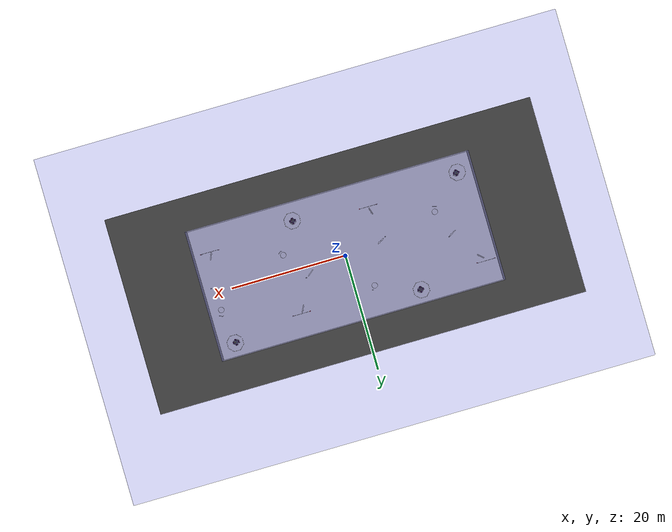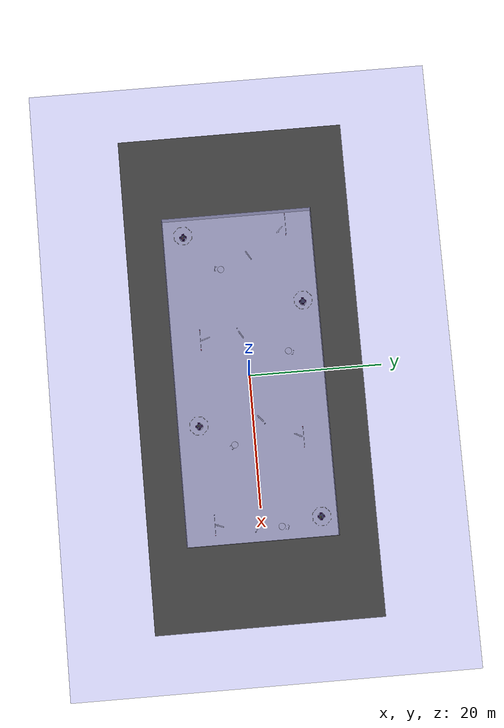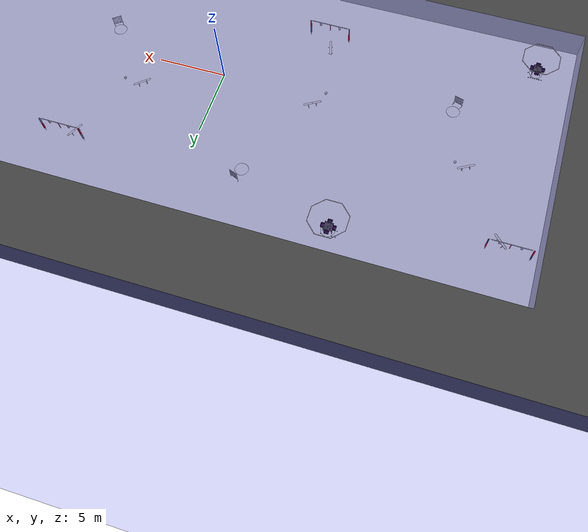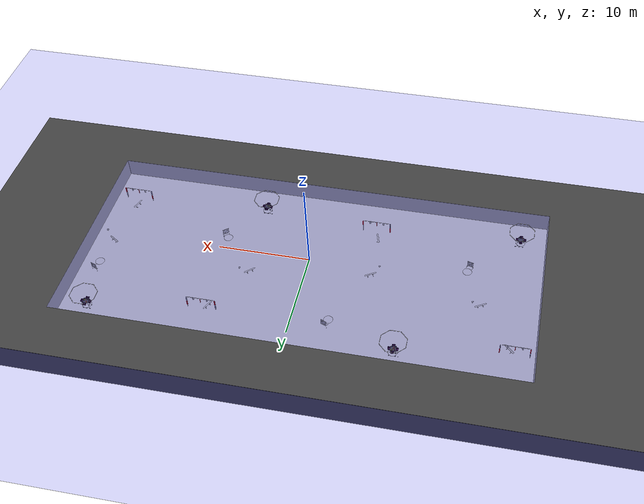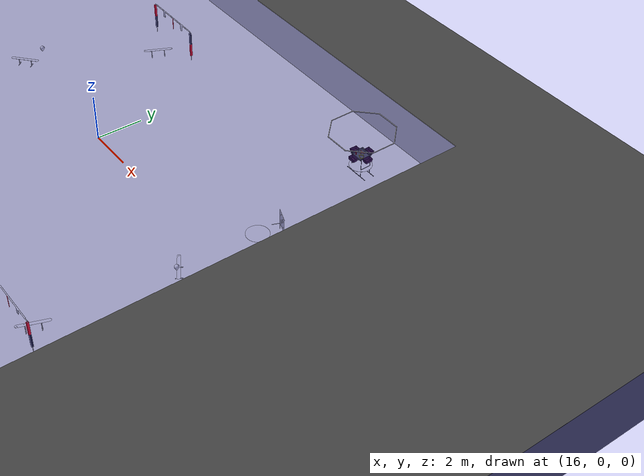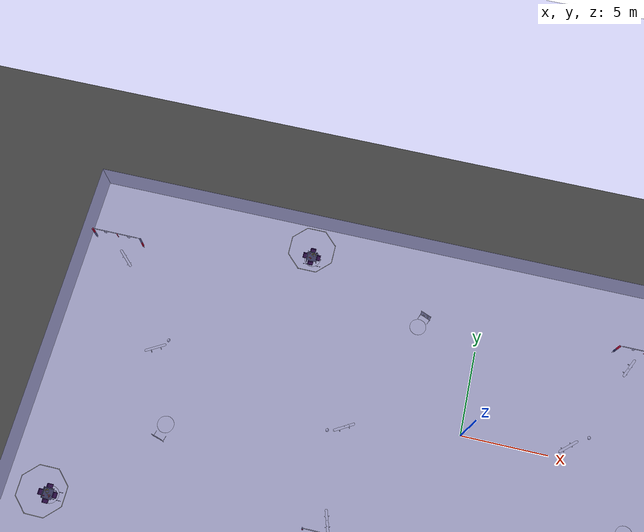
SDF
<sdf version="1.7">
 <world name="default">
  <physics name="default_physics" default="0" type="ode">
   <real_time_update_rate>100</real_time_update_rate>
   <max_step_size>0.01</max_step_size>
   <real_time_factor>1</real_time_factor>
  </physics>
  <spherical_coordinates>
   <surface_model>EARTH_WGS84</surface_model>
   <world_frame_orientation>ENU</world_frame_orientation>
   <latitude_deg>29.6474</latitude_deg>
   <longitude_deg>277.65</longitude_deg>
   <elevation>0.4</elevation>
   <heading_deg>180</heading_deg>
  </spherical_coordinates>
  <magnetic_field>5e-06 2.4e-05 3.9e-05</magnetic_field>
  <light name="illum" type="directional">
   <pose>-4 18 9 0 -0.75 0</pose>
   <diffuse>0.1 0.4 1 1</diffuse>
   <attenuation><constant>1</constant><range>10</range></attenuation>
   <specular>0.1 0.1 0.1 1</specular>
   <direction>0 0 -1</direction>
   <spot><inner_angle>0</inner_angle><outer_angle>0</outer_angle><falloff>0</falloff></spot>
  </light>
  <light name="sky_illum" type="directional">
   <pose>0 0 5 3.14 -0 0</pose>
   <diffuse>1 1 1 1</diffuse>
   <attenuation><constant>1</constant><range>10</range></attenuation>
   <specular>0.1 0.1 0.1 1</specular>
   <direction>0 0 -1</direction>
   <spot><inner_angle>0</inner_angle><outer_angle>0</outer_angle><falloff>0</falloff></spot>
  </light>
  <light name="sun" type="directional">
   <pose>0 0 10 0 -0 0</pose>
   <diffuse>0.8 0.8 0.8 1</diffuse>
   <specular>0.2 0.2 0.2 1</specular>
   <attenuation>
    <range>1000</range>
    <constant>0.9</constant>
    <linear>0.01</linear>
    <quadratic>0.001</quadratic>
   </attenuation>
   <direction>-0.5 0.1 -0.9</direction>
   <spot><inner_angle>0</inner_angle><outer_angle>0</outer_angle><falloff>0</falloff></spot>
  </light>
  <light name="user_point_light_0" type="point">
   <pose>0.109933 -0.142384 1 0 -0 0</pose>
   <diffuse>0.5 0.5 0.5 1</diffuse>
   <specular>0.1 0.1 0.1 1</specular>
   <attenuation>
    <range>100</range>
    <constant>0.5</constant>
    <linear>0.01</linear>
    <quadratic>0.001</quadratic>
   </attenuation>
   <cast_shadows>0</cast_shadows>
   <direction>0 0 -1</direction>
   <spot><inner_angle>0</inner_angle><outer_angle>0</outer_angle><falloff>0</falloff></spot>
  </light>
  <light name="user_point_light_1" type="point">
   <pose>-29.7505 -0.454729 1 0 -0 0</pose>
   <diffuse>0.5 0.5 0.5 1</diffuse>
   <specular>0.1 0.1 0.1 1</specular>
   <attenuation>
    <range>100</range>
    <constant>0.5</constant>
    <linear>0.01</linear>
    <quadratic>0.001</quadratic>
   </attenuation>
   <cast_shadows>0</cast_shadows>
   <direction>0 0 -1</direction>
   <spot><inner_angle>0</inner_angle><outer_angle>0</outer_angle><falloff>0</falloff></spot>
  </light>
  <light name="user_point_light_2" type="point">
   <pose>31.6112 -2.69613 1 0 -0 0</pose>
   <diffuse>0.5 0.5 0.5 1</diffuse>
   <specular>0.1 0.1 0.1 1</specular>
   <attenuation>
    <range>100</range>
    <constant>0.5</constant>
    <linear>0.01</linear>
    <quadratic>0.001</quadratic>
   </attenuation>
   <cast_shadows>0</cast_shadows>
   <direction>0 0 -1</direction>
   <spot><inner_angle>0</inner_angle><outer_angle>0</outer_angle><falloff>0</falloff></spot>
  </light>
  <model name="water">
   <static>1</static>
   <pose>0.194567 0.198111 0 3.14159 9.3e-05 3.14159</pose>
   <link name="link">
    <visual name="visual">
     <transparency>0.8</transparency>
     <cast_shadows>0</cast_shadows>
     <geometry><box><size>92 61 0.02</size></box></geometry>
     <material>
      <ambient>0.2 0.2 0.9 1</ambient>
      <diffuse>0.2 0.2 0.9 1</diffuse>
      <specular>0.1 0.1 0.3 1</specular>
      <emissive>0 0 0 1</emissive>
     </material>
    </visual>
   </link>
  </model>
  <model name="transdec_pinger">
   <static>1</static>
   <pose>23 3 -1.719 0 -0 0</pose>
   <link name="link">
    <visual name="visual">
     <geometry><cylinder><radius>0.5</radius><length>0.001</length></cylinder></geometry>
    </visual>
   </link>
  </model>
  <model name="transdec_pinger2">
   <static>1</static>
   <pose>22 9 -1.719 0 -0 0</pose>
   <link name="link">
    <visual name="visual">
     <geometry><cylinder><radius>0.5</radius><length>0.001</length></cylinder></geometry>
    </visual>
   </link>
  </model>
  <scene>
   <sky><clouds><speed>12</speed></clouds></sky>
   <ambient>0.4 0.4 0.4 1</ambient>
   <background>0.7 0.7 0.7 1</background>
   <shadows>0</shadows>
   <fog><color>0.25 0.6 0.59 1.0</color><type>exp</type><density>0.1</density><start>5</start><end>15</end></fog>
  </scene>
  <gravity>0 0 -9.8</gravity>
  <atmosphere type="adiabatic"/>
  <model name="startgate_2024">
   <static>1</static>
   <link name="base_link">
    <inertial>
     <mass>1</mass>
     <inertia>
      <ixx>0.166667</ixx>
      <ixy>0</ixy>
      <ixz>0</ixz>
      <iyy>0.166667</iyy>
      <iyz>0</iyz>
      <izz>0.166667</izz>
     </inertia>
    </inertial>
    <collision name="base_link_collision">
     <geometry><mesh><uri>file://startgate_2024/startgate.dae</uri></mesh></geometry>
    </collision>
    <visual name="base_link_visual">
     <geometry><mesh><uri>file://startgate_2024/startgate.dae</uri></mesh></geometry>
    </visual>
   </link>
   <pose>22 -7 -0.4 0 -0 3.14</pose>
  </model>
  <model name="buoy_2024">
   <static>1</static>
   <link name="base_link">
    <inertial>
     <mass>1</mass>
     <inertia>
      <ixx>0.166667</ixx>
      <ixy>0</ixy>
      <ixz>0</ixz>
      <iyy>0.166667</iyy>
      <iyz>0</iyz>
      <izz>0.166667</izz>
     </inertia>
    </inertial>
    <collision name="base_link_collision">
     <geometry><mesh><uri>file://buoy_2024/buoy.dae</uri></mesh></geometry>
    </collision>
    <visual name="base_link_visual">
     <geometry><mesh><uri>file://buoy_2024/buoy.dae</uri></mesh></geometry>
    </visual>
   </link>
   <pose>23.5 -1 -0.9 3.14159 0.001592 3.14159</pose>
  </model>
  <model name="mapping_torpedoes_2024">
   <static>1</static>
   <link name="base_link">
    <inertial>
     <mass>1</mass>
     <inertia>
      <ixx>0.166667</ixx>
      <ixy>0</ixy>
      <ixz>0</ixz>
      <iyy>0.166667</iyy>
      <iyz>0</iyz>
      <izz>0.166667</izz>
     </inertia>
    </inertial>
    <collision name="base_link_collision">
     <geometry><mesh><uri>file://mapping_torpedoes_2024/mapping_torpedoes.dae</uri></mesh></geometry>
    </collision>
    <visual name="base_link_visual">
     <geometry><mesh><uri>file://mapping_torpedoes_2024/mapping_torpedoes.dae</uri></mesh></geometry>
    </visual>
   </link>
   <pose>23.25 4 -1.41 0 -0 1.2</pose>
  </model>
  <model name="octogon_2024">
   <static>1</static>
   <link name="base_link">
    <inertial>
     <mass>1</mass>
     <inertia>
      <ixx>0.166667</ixx>
      <ixy>0</ixy>
      <ixz>0</ixz>
      <iyy>0.166667</iyy>
      <iyz>0</iyz>
      <izz>0.166667</izz>
     </inertia>
    </inertial>
    <collision name="base_link_collision">
     <geometry><mesh><uri>file://octogon_2024/octogon.dae</uri></mesh></geometry>
    </collision>
    <visual name="base_link_visual">
     <geometry><mesh><uri>file://octogon_2024/octogon.dae</uri></mesh></geometry>
    </visual>
   </link>
   <pose>22 9 0 0 -0 0</pose>
  </model>
  <model name="collection_table_2024">
   <static>1</static>
   <link name="base_link">
    <inertial>
     <mass>1</mass>
     <inertia>
      <ixx>0.166667</ixx>
      <ixy>0</ixy>
      <ixz>0</ixz>
      <iyy>0.166667</iyy>
      <iyz>0</iyz>
      <izz>0.166667</izz>
     </inertia>
    </inertial>
    <collision name="base_link_collision">
     <geometry><mesh><uri>file://collection_table_2024/collection_table.dae</uri></mesh></geometry>
    </collision>
    <visual name="base_link_visual">
     <geometry><mesh><uri>file://collection_table_2024/collection_table.dae</uri></mesh></geometry>
    </visual>
   </link>
   <pose>22 9 -1.14 0 -0 0</pose>
  </model>
  <model name="tubeworm_2024">
   <static>1</static>
   <link name="base_link">
    <inertial>
     <mass>1</mass>
     <inertia>
      <ixx>0.166667</ixx>
      <ixy>0</ixy>
      <ixz>0</ixz>
      <iyy>0.166667</iyy>
      <iyz>0</iyz>
      <izz>0.166667</izz>
     </inertia>
    </inertial>
    <collision name="base_link_collision">
     <geometry><mesh><uri>file://tubeworm_2024/tubeworm.dae</uri></mesh></geometry>
    </collision>
    <visual name="base_link_visual">
     <geometry><mesh><uri>file://tubeworm_2024/tubeworm.dae</uri></mesh></geometry>
    </visual>
   </link>
   <pose>21.85 8.85 -1.145 0 -0 0</pose>
  </model>
  <model name="nautilus_2024_2">
   <static>1</static>
   <link name="base_link">
    <inertial>
     <mass>1</mass>
     <inertia>
      <ixx>0.166667</ixx>
      <ixy>0</ixy>
      <ixz>0</ixz>
      <iyy>0.166667</iyy>
      <iyz>0</iyz>
      <izz>0.166667</izz>
     </inertia>
    </inertial>
    <collision name="base_link_collision">
     <geometry><mesh><uri>file://nautilus_2024/nautilus.dae</uri></mesh></geometry>
    </collision>
    <visual name="base_link_visual">
     <geometry><mesh><uri>file://nautilus_2024/nautilus.dae</uri></mesh></geometry>
    </visual>
   </link>
   <pose>22.1 8.9 -1.195 0 -0 0</pose>
  </model>
  <model name="coral_2024">
   <static>1</static>
   <link name="base_link">
    <inertial>
     <mass>1</mass>
     <inertia>
      <ixx>0.166667</ixx>
      <ixy>0</ixy>
      <ixz>0</ixz>
      <iyy>0.166667</iyy>
      <iyz>0</iyz>
      <izz>0.166667</izz>
     </inertia>
    </inertial>
    <collision name="base_link_collision">
     <geometry><mesh><uri>file://coral_2024/coral.dae</uri></mesh></geometry>
    </collision>
    <visual name="base_link_visual">
     <geometry><mesh><uri>file://coral_2024/coral.dae</uri></mesh></geometry>
    </visual>
   </link>
   <pose>21.9 9.1 -1.23 0 0 -1.5708</pose>
  </model>
  <model name="pathmarker_2024">
   <static>1</static>
   <link name="base_link">
    <inertial>
     <mass>1</mass>
     <inertia>
      <ixx>0.166667</ixx>
      <ixy>0</ixy>
      <ixz>0</ixz>
      <iyy>0.166667</iyy>
      <iyz>0</iyz>
      <izz>0.166667</izz>
     </inertia>
    </inertial>
    <collision name="base_link_collision">
     <geometry><mesh><uri>file://pathmarker_2024/pathmarker.dae</uri></mesh></geometry>
    </collision>
    <visual name="base_link_visual">
     <geometry><mesh><uri>file://pathmarker_2024/pathmarker.dae</uri></mesh></geometry>
    </visual>
   </link>
   <pose>22.15 -6.35 -1.85 0 0 -0.35</pose>
  </model>
  <model name="pathmarker_2024_0">
   <static>1</static>
   <link name="base_link">
    <inertial>
     <mass>1</mass>
     <inertia>
      <ixx>0.166667</ixx>
      <ixy>0</ixy>
      <ixz>0</ixz>
      <iyy>0.166667</iyy>
      <iyz>0</iyz>
      <izz>0.166667</izz>
     </inertia>
    </inertial>
    <collision name="base_link_collision">
     <geometry><mesh><uri>file://pathmarker_2024/pathmarker.dae</uri></mesh></geometry>
    </collision>
    <visual name="base_link_visual">
     <geometry><mesh><uri>file://pathmarker_2024/pathmarker.dae</uri></mesh></geometry>
    </visual>
   </link>
   <pose>22.75 -0.5 -1.85 0 -0 1</pose>
  </model>
  <model name="woollettpool_2024">
   <static>1</static>
   <link name="base_link">
    <inertial>
     <mass>1</mass>
     <inertia>
      <ixx>0.166667</ixx>
      <ixy>0</ixy>
      <ixz>0</ixz>
      <iyy>0.166667</iyy>
      <iyz>0</iyz>
      <izz>0.166667</izz>
     </inertia>
    </inertial>
    <collision name="base_link_collision">
     <geometry><mesh><uri>file://woollett_pool_2024/WoollettPool.dae</uri></mesh></geometry>
    </collision>
    <visual name="base_link_visual">
     <geometry><mesh><uri>file://woollett_pool_2024/WoollettPool.dae</uri></mesh></geometry>
    </visual>
   </link>
   <pose>0 0 -0.4 0 -0 1.5708</pose>
  </model>
  <model name="startgate_2024_clone">
   <static>1</static>
   <link name="base_link">
    <inertial>
     <mass>1</mass>
     <inertia>
      <ixx>0.166667</ixx>
      <ixy>0</ixy>
      <ixz>0</ixz>
      <iyy>0.166667</iyy>
      <iyz>0</iyz>
      <izz>0.166667</izz>
     </inertia>
    </inertial>
    <collision name="base_link_collision">
     <geometry><mesh><uri>file://startgate_2024/startgate.dae</uri></mesh></geometry>
    </collision>
    <visual name="base_link_visual">
     <geometry><mesh><uri>file://startgate_2024/startgate.dae</uri></mesh></geometry>
    </visual>
   </link>
   <pose>9.85936 7.35739 -0.4 0 -0 0</pose>
  </model>
  <model name="buoy_2024_clone">
   <static>1</static>
   <link name="base_link">
    <inertial>
     <mass>1</mass>
     <inertia>
      <ixx>0.166667</ixx>
      <ixy>0</ixy>
      <ixz>0</ixz>
      <iyy>0.166667</iyy>
      <iyz>0</iyz>
      <izz>0.166667</izz>
     </inertia>
    </inertial>
    <collision name="base_link_collision">
     <geometry><mesh><uri>file://buoy_2024/buoy.dae</uri></mesh></geometry>
    </collision>
    <visual name="base_link_visual">
     <geometry><mesh><uri>file://buoy_2024/buoy.dae</uri></mesh></geometry>
    </visual>
   </link>
   <pose>7.39099 1.73709 -0.9 3.14159 0.001592 3.14159</pose>
  </model>
  <model name="mapping_torpedoes_2024_clone">
   <static>1</static>
   <link name="base_link">
    <inertial>
     <mass>1</mass>
     <inertia>
      <ixx>0.166667</ixx>
      <ixy>0</ixy>
      <ixz>0</ixz>
      <iyy>0.166667</iyy>
      <iyz>0</iyz>
      <izz>0.166667</izz>
     </inertia>
    </inertial>
    <collision name="base_link_collision">
     <geometry><mesh><uri>file://mapping_torpedoes_2024/mapping_torpedoes.dae</uri></mesh></geometry>
    </collision>
    <visual name="base_link_visual">
     <geometry><mesh><uri>file://mapping_torpedoes_2024/mapping_torpedoes.dae</uri></mesh></geometry>
    </visual>
   </link>
   <pose>10.6189 -3.65535 -1.41 0 0 -0.899999</pose>
  </model>
  <model name="octogon_2024_clone">
   <static>1</static>
   <link name="base_link">
    <inertial>
     <mass>1</mass>
     <inertia>
      <ixx>0.166667</ixx>
      <ixy>0</ixy>
      <ixz>0</ixz>
      <iyy>0.166667</iyy>
      <iyz>0</iyz>
      <izz>0.166667</izz>
     </inertia>
    </inertial>
    <collision name="base_link_collision">
     <geometry><mesh><uri>file://octogon_2024/octogon.dae</uri></mesh></geometry>
    </collision>
    <visual name="base_link_visual">
     <geometry><mesh><uri>file://octogon_2024/octogon.dae</uri></mesh></geometry>
    </visual>
   </link>
   <pose>6.97326 -8.21235 0 0 -0 0</pose>
  </model>
  <model name="collection_table_2024_clone">
   <static>1</static>
   <link name="base_link">
    <inertial>
     <mass>1</mass>
     <inertia>
      <ixx>0.166667</ixx>
      <ixy>0</ixy>
      <ixz>0</ixz>
      <iyy>0.166667</iyy>
      <iyz>0</iyz>
      <izz>0.166667</izz>
     </inertia>
    </inertial>
    <collision name="base_link_collision">
     <geometry><mesh><uri>file://collection_table_2024/collection_table.dae</uri></mesh></geometry>
    </collision>
    <visual name="base_link_visual">
     <geometry><mesh><uri>file://collection_table_2024/collection_table.dae</uri></mesh></geometry>
    </visual>
   </link>
   <pose>6.97326 -8.21235 -1.14 0 -0 0</pose>
  </model>
  <model name="tubeworm_2024_clone">
   <static>1</static>
   <link name="base_link">
    <inertial>
     <mass>1</mass>
     <inertia>
      <ixx>0.166667</ixx>
      <ixy>0</ixy>
      <ixz>0</ixz>
      <iyy>0.166667</iyy>
      <iyz>0</iyz>
      <izz>0.166667</izz>
     </inertia>
    </inertial>
    <collision name="base_link_collision">
     <geometry><mesh><uri>file://tubeworm_2024/tubeworm.dae</uri></mesh></geometry>
    </collision>
    <visual name="base_link_visual">
     <geometry><mesh><uri>file://tubeworm_2024/tubeworm.dae</uri></mesh></geometry>
    </visual>
   </link>
   <pose>7.1656 -8.37617 -1.145 0 -0 0</pose>
  </model>
  <model name="nautilus_2024_2_clone">
   <static>1</static>
   <link name="base_link">
    <inertial>
     <mass>1</mass>
     <inertia>
      <ixx>0.166667</ixx>
      <ixy>0</ixy>
      <ixz>0</ixz>
      <iyy>0.166667</iyy>
      <iyz>0</iyz>
      <izz>0.166667</izz>
     </inertia>
    </inertial>
    <collision name="base_link_collision">
     <geometry><mesh><uri>file://nautilus_2024/nautilus.dae</uri></mesh></geometry>
    </collision>
    <visual name="base_link_visual">
     <geometry><mesh><uri>file://nautilus_2024/nautilus.dae</uri></mesh></geometry>
    </visual>
   </link>
   <pose>6.87279 -8.32232 -1.195 0 -0 0</pose>
  </model>
  <model name="coral_2024_clone">
   <static>1</static>
   <link name="base_link">
    <inertial>
     <mass>1</mass>
     <inertia>
      <ixx>0.166667</ixx>
      <ixy>0</ixy>
      <ixz>0</ixz>
      <iyy>0.166667</iyy>
      <iyz>0</iyz>
      <izz>0.166667</izz>
     </inertia>
    </inertial>
    <collision name="base_link_collision">
     <geometry><mesh><uri>file://coral_2024/coral.dae</uri></mesh></geometry>
    </collision>
    <visual name="base_link_visual">
     <geometry><mesh><uri>file://coral_2024/coral.dae</uri></mesh></geometry>
    </visual>
   </link>
   <pose>7.07809 -8.09682 -1.23 0 0 -1.5708</pose>
  </model>
  <model name="pathmarker_2024_clone">
   <static>1</static>
   <link name="base_link">
    <inertial>
     <mass>1</mass>
     <inertia>
      <ixx>0.166667</ixx>
      <ixy>0</ixy>
      <ixz>0</ixz>
      <iyy>0.166667</iyy>
      <iyz>0</iyz>
      <izz>0.166667</izz>
     </inertia>
    </inertial>
    <collision name="base_link_collision">
     <geometry><mesh><uri>file://pathmarker_2024/pathmarker.dae</uri></mesh></geometry>
    </collision>
    <visual name="base_link_visual">
     <geometry><mesh><uri>file://pathmarker_2024/pathmarker.dae</uri></mesh></geometry>
    </visual>
   </link>
   <pose>9.5 6.66316 -1.85 0 0 -0.449999</pose>
  </model>
  <model name="pathmarker_2024_clone_clone">
   <static>1</static>
   <link name="base_link">
    <inertial>
     <mass>1</mass>
     <inertia>
      <ixx>0.166667</ixx>
      <ixy>0</ixy>
      <ixz>0</ixz>
      <iyy>0.166667</iyy>
      <iyz>0</iyz>
      <izz>0.166667</izz>
     </inertia>
    </inertial>
    <collision name="base_link_collision">
     <geometry><mesh><uri>file://pathmarker_2024/pathmarker.dae</uri></mesh></geometry>
    </collision>
    <visual name="base_link_visual">
     <geometry><mesh><uri>file://pathmarker_2024/pathmarker.dae</uri></mesh></geometry>
    </visual>
   </link>
   <pose>6.5 1.15 -1.85 0 0 -0.849999</pose>
  </model>
  <model name="transdec_pinger_clone">
   <static>1</static>
   <pose>10.1762 -3.0687 -1.719 0 -0 0</pose>
   <link name="link">
    <visual name="visual">
     <geometry><cylinder><radius>0.5</radius><length>0.001</length></cylinder></geometry>
    </visual>
   </link>
  </model>
  <model name="transdec_pinger_clone_0">
   <static>1</static>
   <pose>7.0103 -8.14456 -1.719 0 -0 0</pose>
   <link name="link">
    <visual name="visual">
     <geometry><cylinder><radius>0.5</radius><length>0.001</length></cylinder></geometry>
    </visual>
   </link>
  </model>
  <model name="startgate_2024_clone_0">
   <static>1</static>
   <link name="base_link">
    <inertial>
     <mass>1</mass>
     <inertia>
      <ixx>0.166667</ixx>
      <ixy>0</ixy>
      <ixz>0</ixz>
      <iyy>0.166667</iyy>
      <iyz>0</iyz>
      <izz>0.166667</izz>
     </inertia>
    </inertial>
    <collision name="base_link_collision">
     <geometry><mesh><uri>file://startgate_2024/startgate.dae</uri></mesh></geometry>
    </collision>
    <visual name="base_link_visual">
     <geometry><mesh><uri>file://startgate_2024/startgate.dae</uri></mesh></geometry>
    </visual>
   </link>
   <pose>-6.05639 -6.93574 -0.4 0 -0 3.14</pose>
  </model>
  <model name="buoy_2024_clone_0">
   <static>1</static>
   <link name="base_link">
    <inertial>
     <mass>1</mass>
     <inertia>
      <ixx>0.166667</ixx>
      <ixy>0</ixy>
      <ixz>0</ixz>
      <iyy>0.166667</iyy>
      <iyz>0</iyz>
      <izz>0.166667</izz>
     </inertia>
    </inertial>
    <collision name="base_link_collision">
     <geometry><mesh><uri>file://buoy_2024/buoy.dae</uri></mesh></geometry>
    </collision>
    <visual name="base_link_visual">
     <geometry><mesh><uri>file://buoy_2024/buoy.dae</uri></mesh></geometry>
    </visual>
   </link>
   <pose>-7.46146 -1.27746 -0.9 3.14159 0.001592 3.14159</pose>
  </model>
  <model name="mapping_torpedoes_2024_clone_0">
   <static>1</static>
   <link name="base_link">
    <inertial>
     <mass>1</mass>
     <inertia>
      <ixx>0.166667</ixx>
      <ixy>0</ixy>
      <ixz>0</ixz>
      <iyy>0.166667</iyy>
      <iyz>0</iyz>
      <izz>0.166667</izz>
     </inertia>
    </inertial>
    <collision name="base_link_collision">
     <geometry><mesh><uri>file://mapping_torpedoes_2024/mapping_torpedoes.dae</uri></mesh></geometry>
    </collision>
    <visual name="base_link_visual">
     <geometry><mesh><uri>file://mapping_torpedoes_2024/mapping_torpedoes.dae</uri></mesh></geometry>
    </visual>
   </link>
   <pose>-3.13232 7.00108 -1.41 0 -0 1.2</pose>
  </model>
  <model name="octogon_2024_clone_0">
   <static>1</static>
   <link name="base_link">
    <inertial>
     <mass>1</mass>
     <inertia>
      <ixx>0.166667</ixx>
      <ixy>0</ixy>
      <ixz>0</ixz>
      <iyy>0.166667</iyy>
      <iyz>0</iyz>
      <izz>0.166667</izz>
     </inertia>
    </inertial>
    <collision name="base_link_collision">
     <geometry><mesh><uri>file://octogon_2024/octogon.dae</uri></mesh></geometry>
    </collision>
    <visual name="base_link_visual">
     <geometry><mesh><uri>file://octogon_2024/octogon.dae</uri></mesh></geometry>
    </visual>
   </link>
   <pose>-10.8033 9.08971 0 0 -0 0</pose>
  </model>
  <model name="collection_table_2024_clone_0">
   <static>1</static>
   <link name="base_link">
    <inertial>
     <mass>1</mass>
     <inertia>
      <ixx>0.166667</ixx>
      <ixy>0</ixy>
      <ixz>0</ixz>
      <iyy>0.166667</iyy>
      <iyz>0</iyz>
      <izz>0.166667</izz>
     </inertia>
    </inertial>
    <collision name="base_link_collision">
     <geometry><mesh><uri>file://collection_table_2024/collection_table.dae</uri></mesh></geometry>
    </collision>
    <visual name="base_link_visual">
     <geometry><mesh><uri>file://collection_table_2024/collection_table.dae</uri></mesh></geometry>
    </visual>
   </link>
   <pose>-10.8033 9.08971 -1.14 0 -0 0</pose>
  </model>
  <model name="tubeworm_2024_clone_0">
   <static>1</static>
   <link name="base_link">
    <inertial>
     <mass>1</mass>
     <inertia>
      <ixx>0.166667</ixx>
      <ixy>0</ixy>
      <ixz>0</ixz>
      <iyy>0.166667</iyy>
      <iyz>0</iyz>
      <izz>0.166667</izz>
     </inertia>
    </inertial>
    <collision name="base_link_collision">
     <geometry><mesh><uri>file://tubeworm_2024/tubeworm.dae</uri></mesh></geometry>
    </collision>
    <visual name="base_link_visual">
     <geometry><mesh><uri>file://tubeworm_2024/tubeworm.dae</uri></mesh></geometry>
    </visual>
   </link>
   <pose>-10.9658 9.24399 -1.145 0 -0 0</pose>
  </model>
  <model name="nautilus_2024_2_clone_0">
   <static>1</static>
   <link name="base_link">
    <inertial>
     <mass>1</mass>
     <inertia>
      <ixx>0.166667</ixx>
      <ixy>0</ixy>
      <ixz>0</ixz>
      <iyy>0.166667</iyy>
      <iyz>0</iyz>
      <izz>0.166667</izz>
     </inertia>
    </inertial>
    <collision name="base_link_collision">
     <geometry><mesh><uri>file://nautilus_2024/nautilus.dae</uri></mesh></geometry>
    </collision>
    <visual name="base_link_visual">
     <geometry><mesh><uri>file://nautilus_2024/nautilus.dae</uri></mesh></geometry>
    </visual>
   </link>
   <pose>-10.7207 9.20979 -1.195 0 -0 0</pose>
  </model>
  <model name="coral_2024_clone_0">
   <static>1</static>
   <link name="base_link">
    <inertial>
     <mass>1</mass>
     <inertia>
      <ixx>0.166667</ixx>
      <ixy>0</ixy>
      <ixz>0</ixz>
      <iyy>0.166667</iyy>
      <iyz>0</iyz>
      <izz>0.166667</izz>
     </inertia>
    </inertial>
    <collision name="base_link_collision">
     <geometry><mesh><uri>file://coral_2024/coral.dae</uri></mesh></geometry>
    </collision>
    <visual name="base_link_visual">
     <geometry><mesh><uri>file://coral_2024/coral.dae</uri></mesh></geometry>
    </visual>
   </link>
   <pose>-10.8689 8.9533 -1.23 0 0 -1.5708</pose>
  </model>
  <model name="pathmarker_2024_clone_0">
   <static>1</static>
   <link name="base_link">
    <inertial>
     <mass>1</mass>
     <inertia>
      <ixx>0.166667</ixx>
      <ixy>0</ixy>
      <ixz>0</ixz>
      <iyy>0.166667</iyy>
      <iyz>0</iyz>
      <izz>0.166667</izz>
     </inertia>
    </inertial>
    <collision name="base_link_collision">
     <geometry><mesh><uri>file://pathmarker_2024/pathmarker.dae</uri></mesh></geometry>
    </collision>
    <visual name="base_link_visual">
     <geometry><mesh><uri>file://pathmarker_2024/pathmarker.dae</uri></mesh></geometry>
    </visual>
   </link>
   <pose>-6.34419 -6.17533 -1.85 0 -0 0.299999</pose>
  </model>
  <model name="pathmarker_2024_0_clone">
   <static>1</static>
   <link name="base_link">
    <inertial>
     <mass>1</mass>
     <inertia>
      <ixx>0.166667</ixx>
      <ixy>0</ixy>
      <ixz>0</ixz>
      <iyy>0.166667</iyy>
      <iyz>0</iyz>
      <izz>0.166667</izz>
     </inertia>
    </inertial>
    <collision name="base_link_collision">
     <geometry><mesh><uri>file://pathmarker_2024/pathmarker.dae</uri></mesh></geometry>
    </collision>
    <visual name="base_link_visual">
     <geometry><mesh><uri>file://pathmarker_2024/pathmarker.dae</uri></mesh></geometry>
    </visual>
   </link>
   <pose>-6.54798 -0.741077 -1.85 0 -0 2.1</pose>
  </model>
  <model name="transdec_pinger_clone_1">
   <static>1</static>
   <pose>-3.44814 6.26977 -1.719 0 -0 0</pose>
   <link name="link">
    <visual name="visual">
     <geometry><cylinder><radius>0.5</radius><length>0.001</length></cylinder></geometry>
    </visual>
   </link>
  </model>
  <model name="transdec_pinger_clone_2">
   <static>1</static>
   <pose>-10.7716 9.13283 -1.719 0 -0 0</pose>
   <link name="link">
    <visual name="visual">
     <geometry><cylinder><radius>0.5</radius><length>0.001</length></cylinder></geometry>
    </visual>
   </link>
  </model>
  <model name="startgate_2024_clone_1">
   <static>1</static>
   <link name="base_link">
    <inertial>
     <mass>1</mass>
     <inertia>
      <ixx>0.166667</ixx>
      <ixy>0</ixy>
      <ixz>0</ixz>
      <iyy>0.166667</iyy>
      <iyz>0</iyz>
      <izz>0.166667</izz>
     </inertia>
    </inertial>
    <collision name="base_link_collision">
     <geometry><mesh><uri>file://startgate_2024/startgate.dae</uri></mesh></geometry>
    </collision>
    <visual name="base_link_visual">
     <geometry><mesh><uri>file://startgate_2024/startgate.dae</uri></mesh></geometry>
    </visual>
   </link>
   <pose>-22.8706 7.40775 -0.4 0 -0 0</pose>
  </model>
  <model name="buoy_2024_clone_1">
   <static>1</static>
   <link name="base_link">
    <inertial>
     <mass>1</mass>
     <inertia>
      <ixx>0.166667</ixx>
      <ixy>0</ixy>
      <ixz>0</ixz>
      <iyy>0.166667</iyy>
      <iyz>0</iyz>
      <izz>0.166667</izz>
     </inertia>
    </inertial>
    <collision name="base_link_collision">
     <geometry><mesh><uri>file://buoy_2024/buoy.dae</uri></mesh></geometry>
    </collision>
    <visual name="base_link_visual">
     <geometry><mesh><uri>file://buoy_2024/buoy.dae</uri></mesh></geometry>
    </visual>
   </link>
   <pose>-17.939 1.776 -0.9 3.14159 0.001592 3.14159</pose>
  </model>
  <model name="mapping_torpedoes_2024_clone_1">
   <static>1</static>
   <link name="base_link">
    <inertial>
     <mass>1</mass>
     <inertia>
      <ixx>0.166667</ixx>
      <ixy>0</ixy>
      <ixz>0</ixz>
      <iyy>0.166667</iyy>
      <iyz>0</iyz>
      <izz>0.166667</izz>
     </inertia>
    </inertial>
    <collision name="base_link_collision">
     <geometry><mesh><uri>file://mapping_torpedoes_2024/mapping_torpedoes.dae</uri></mesh></geometry>
    </collision>
    <visual name="base_link_visual">
     <geometry><mesh><uri>file://mapping_torpedoes_2024/mapping_torpedoes.dae</uri></mesh></geometry>
    </visual>
   </link>
   <pose>-17.0562 -3.88619 -1.41 0 0 -1.85</pose>
  </model>
  <model name="octogon_2024_clone_1">
   <static>1</static>
   <link name="base_link">
    <inertial>
     <mass>1</mass>
     <inertia>
      <ixx>0.166667</ixx>
      <ixy>0</ixy>
      <ixz>0</ixz>
      <iyy>0.166667</iyy>
      <iyz>0</iyz>
      <izz>0.166667</izz>
     </inertia>
    </inertial>
    <collision name="base_link_collision">
     <geometry><mesh><uri>file://octogon_2024/octogon.dae</uri></mesh></geometry>
    </collision>
    <visual name="base_link_visual">
     <geometry><mesh><uri>file://octogon_2024/octogon.dae</uri></mesh></geometry>
    </visual>
   </link>
   <pose>-22.1704 -8.33071 0 0 -0 0</pose>
  </model>
  <model name="collection_table_2024_clone_1">
   <static>1</static>
   <link name="base_link">
    <inertial>
     <mass>1</mass>
     <inertia>
      <ixx>0.166667</ixx>
      <ixy>0</ixy>
      <ixz>0</ixz>
      <iyy>0.166667</iyy>
      <iyz>0</iyz>
      <izz>0.166667</izz>
     </inertia>
    </inertial>
    <collision name="base_link_collision">
     <geometry><mesh><uri>file://collection_table_2024/collection_table.dae</uri></mesh></geometry>
    </collision>
    <visual name="base_link_visual">
     <geometry><mesh><uri>file://collection_table_2024/collection_table.dae</uri></mesh></geometry>
    </visual>
   </link>
   <pose>-22.1704 -8.36116 -1.14 0 -0 0</pose>
  </model>
  <model name="tubeworm_2024_clone_1">
   <static>1</static>
   <link name="base_link">
    <inertial>
     <mass>1</mass>
     <inertia>
      <ixx>0.166667</ixx>
      <ixy>0</ixy>
      <ixz>0</ixz>
      <iyy>0.166667</iyy>
      <iyz>0</iyz>
      <izz>0.166667</izz>
     </inertia>
    </inertial>
    <collision name="base_link_collision">
     <geometry><mesh><uri>file://tubeworm_2024/tubeworm.dae</uri></mesh></geometry>
    </collision>
    <visual name="base_link_visual">
     <geometry><mesh><uri>file://tubeworm_2024/tubeworm.dae</uri></mesh></geometry>
    </visual>
   </link>
   <pose>-22.3449 -8.52716 -1.145 0 -0 0</pose>
  </model>
  <model name="nautilus_2024_2_clone_1">
   <static>1</static>
   <link name="base_link">
    <inertial>
     <mass>1</mass>
     <inertia>
      <ixx>0.166667</ixx>
      <ixy>0</ixy>
      <ixz>0</ixz>
      <iyy>0.166667</iyy>
      <iyz>0</iyz>
      <izz>0.166667</izz>
     </inertia>
    </inertial>
    <collision name="base_link_collision">
     <geometry><mesh><uri>file://nautilus_2024/nautilus.dae</uri></mesh></geometry>
    </collision>
    <visual name="base_link_visual">
     <geometry><mesh><uri>file://nautilus_2024/nautilus.dae</uri></mesh></geometry>
    </visual>
   </link>
   <pose>-22.2637 -8.25301 -1.195 0 -0 0</pose>
  </model>
  <model name="coral_2024_clone_1">
   <static>1</static>
   <link name="base_link">
    <inertial>
     <mass>1</mass>
     <inertia>
      <ixx>0.166667</ixx>
      <ixy>0</ixy>
      <ixz>0</ixz>
      <iyy>0.166667</iyy>
      <iyz>0</iyz>
      <izz>0.166667</izz>
     </inertia>
    </inertial>
    <collision name="base_link_collision">
     <geometry><mesh><uri>file://coral_2024/coral.dae</uri></mesh></geometry>
    </collision>
    <visual name="base_link_visual">
     <geometry><mesh><uri>file://coral_2024/coral.dae</uri></mesh></geometry>
    </visual>
   </link>
   <pose>-22.0606 -8.4967 -1.23 0 0 -1.5708</pose>
  </model>
  <model name="pathmarker_2024_clone_1">
   <static>1</static>
   <link name="base_link">
    <inertial>
     <mass>1</mass>
     <inertia>
      <ixx>0.166667</ixx>
      <ixy>0</ixy>
      <ixz>0</ixz>
      <iyy>0.166667</iyy>
      <iyz>0</iyz>
      <izz>0.166667</izz>
     </inertia>
    </inertial>
    <collision name="base_link_collision">
     <geometry><mesh><uri>file://pathmarker_2024/pathmarker.dae</uri></mesh></geometry>
    </collision>
    <visual name="base_link_visual">
     <geometry><mesh><uri>file://pathmarker_2024/pathmarker.dae</uri></mesh></geometry>
    </visual>
   </link>
   <pose>-22.3011 6.50654 -1.85 0 -0 0.8</pose>
  </model>
  <model name="pathmarker_2024_0_clone_0">
   <static>1</static>
   <link name="base_link">
    <inertial>
     <mass>1</mass>
     <inertia>
      <ixx>0.166667</ixx>
      <ixy>0</ixy>
      <ixz>0</ixz>
      <iyy>0.166667</iyy>
      <iyz>0</iyz>
      <izz>0.166667</izz>
     </inertia>
    </inertial>
    <collision name="base_link_collision">
     <geometry><mesh><uri>file://pathmarker_2024/pathmarker.dae</uri></mesh></geometry>
    </collision>
    <visual name="base_link_visual">
     <geometry><mesh><uri>file://pathmarker_2024/pathmarker.dae</uri></mesh></geometry>
    </visual>
   </link>
   <pose>-18.8009 1.35 -1.85 0 0 -1.05</pose>
  </model>
  <model name="transdec_pinger_clone_3">
   <static>1</static>
   <pose>-16.85 -3 -1.719 0 -0 0</pose>
   <link name="link">
    <visual name="visual">
     <geometry><cylinder><radius>0.5</radius><length>0.001</length></cylinder></geometry>
    </visual>
   </link>
  </model>
  <model name="transdec_pinger2_clone">
   <static>1</static>
   <pose>-22.1599 -8.36903 -1.719 0 -0 0</pose>
   <link name="link">
    <visual name="visual">
     <geometry><cylinder><radius>0.5</radius><length>0.001</length></cylinder></geometry>
    </visual>
   </link>
  </model>
 </world>
</sdf>
